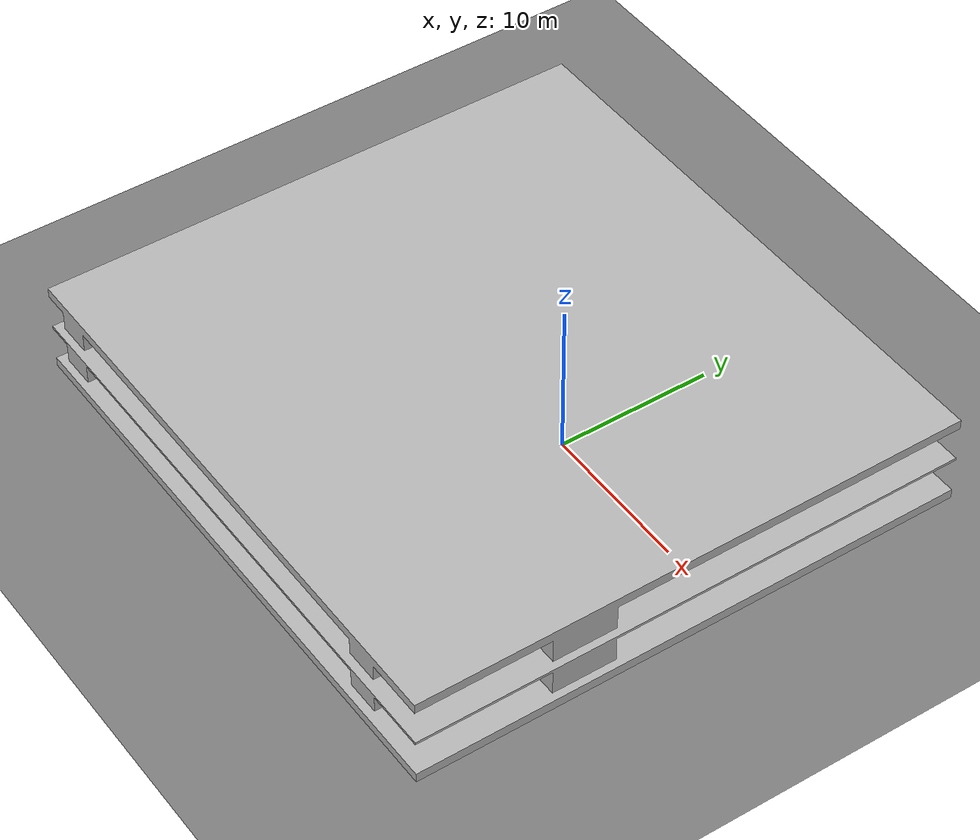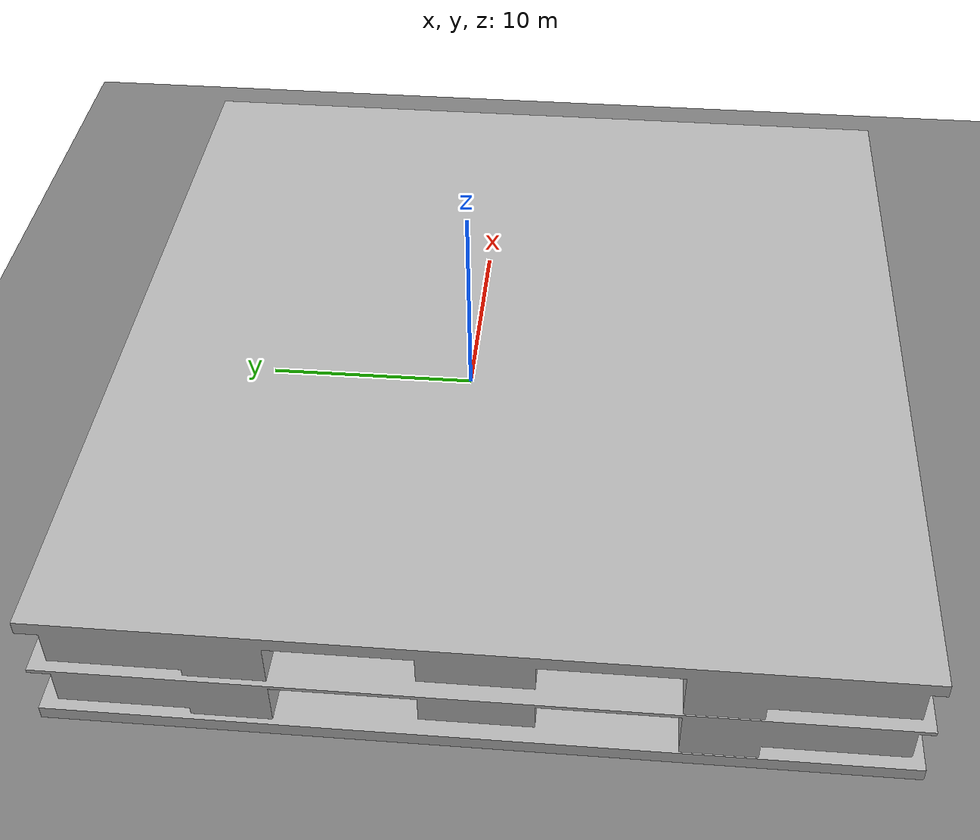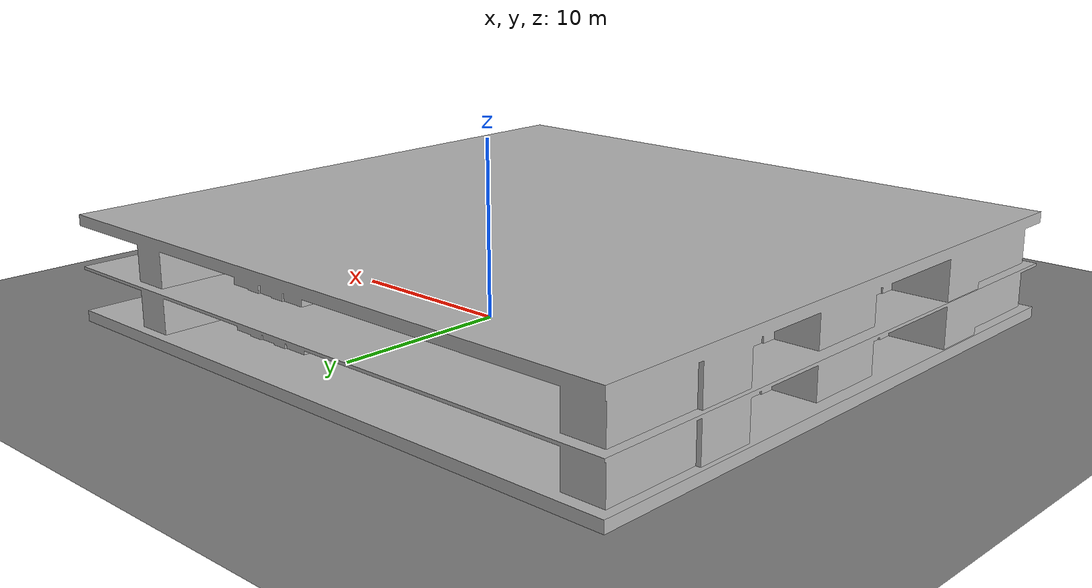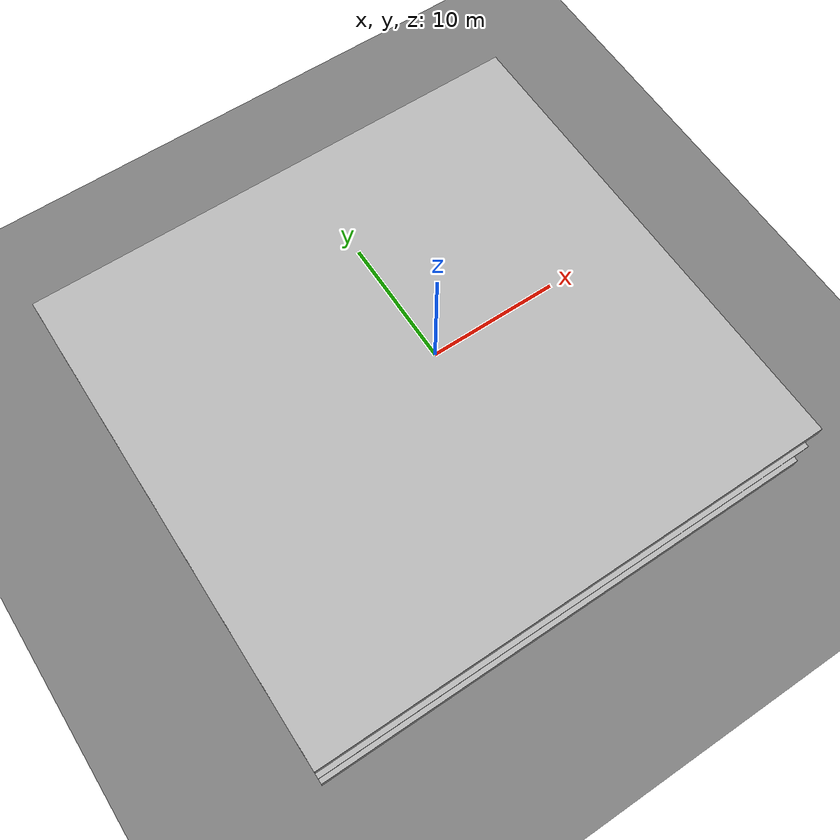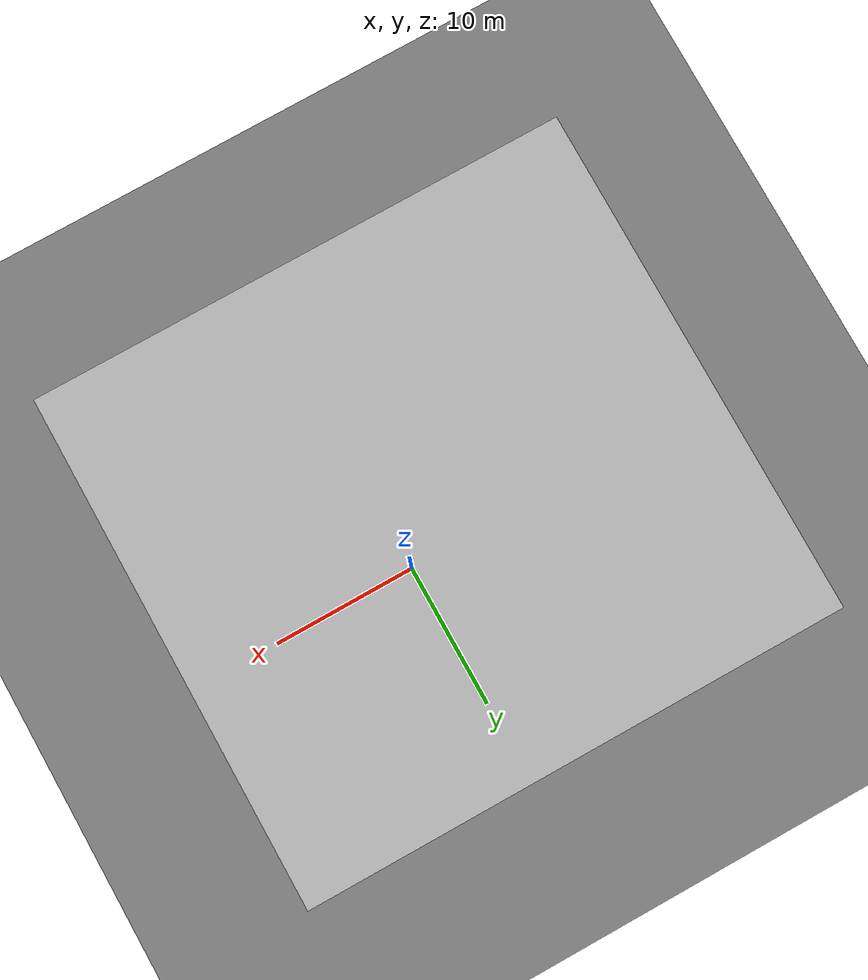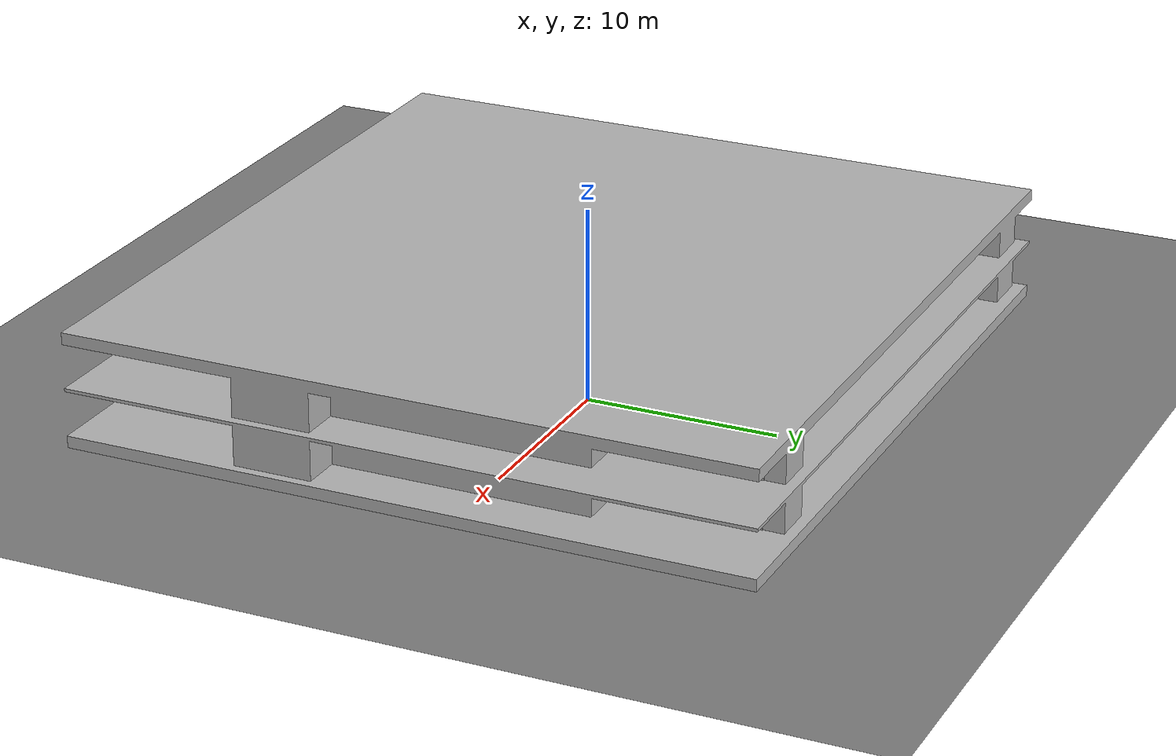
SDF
<?xml version="1.0" ?>
<sdf version="1.9">
  <world name="test_building_world">

    <physics name="default_physics" type="ode">
      <max_step_size>0.005</max_step_size>
      <real_time_factor>1.0</real_time_factor>
      <real_time_update_rate>200</real_time_update_rate>
    </physics>

    <plugin filename="gz-sim-physics-system" name="gz::sim::systems::Physics"/>
    <plugin filename="gz-sim-user-commands-system" name="gz::sim::systems::UserCommands"/>
    <plugin filename="gz-sim-scene-broadcaster-system" name="gz::sim::systems::SceneBroadcaster"/>
    <plugin filename="gz-sim-sensors-system" name="gz::sim::systems::Sensors">
      <render_engine>ogre2</render_engine>
    </plugin>
    <plugin filename="gz-sim-imu-system" name="gz::sim::systems::Imu"/>
    <plugin filename="gz-sim-contact-system" name="gz::sim::systems::Contact"/>
    <plugin filename="gz-sim-magnetometer-system" name="gz::sim::systems::Magnetometer"/>
    <plugin filename="gz-sim-air-pressure-system" name="gz::sim::systems::AirPressure"/>
    <plugin filename="gz-sim-navsat-system" name="gz::sim::systems::NavSat"/>
    <plugin filename="gz-sim-forcetorque-system" name="gz::sim::systems::ForceTorque"/>

    <spherical_coordinates>
      <surface_model>EARTH_WGS84</surface_model>
      <world_frame_orientation>ENU</world_frame_orientation>
      <latitude_deg>47.397971057728974</latitude_deg>
      <longitude_deg>8.546163739800146</longitude_deg>
      <elevation>0</elevation>
    </spherical_coordinates>

    <scene>
      <ambient>0.6 0.6 0.6 1.0</ambient>
      <background>0.3 0.3 0.3 1.0</background>
      <shadows>false</shadows>
    </scene>

    <light type="directional" name="sun">
      <cast_shadows>false</cast_shadows>
      <pose>0 0 10 0 0 0</pose>
      <diffuse>0.9 0.9 0.9 1</diffuse>
      <specular>0.3 0.3 0.3 1</specular>
      <direction>-0.5 0.1 -0.9</direction>
    </light>

    <model name="ground_plane">
      <static>true</static>
      <link name="link">
        <collision name="collision">
          <geometry>
            <plane>
              <normal>0 0 1</normal>
              <size>100 100</size>
            </plane>
          </geometry>
        </collision>
        <visual name="visual">
          <geometry>
            <plane>
              <normal>0 0 1</normal>
              <size>100 100</size>
            </plane>
          </geometry>
          <material>
            <ambient>0.4 0.4 0.4 1</ambient>
            <diffuse>0.5 0.5 0.5 1</diffuse>
          </material>
        </visual>
      </link>
    </model>

    <include>
      <uri>model://test</uri>
      <name>test_building</name>
      <pose>0 0 0 0 0 0</pose>
    </include>

  </world>
</sdf>

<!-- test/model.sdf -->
<sdf version="1.9">
  <model name="test_building">
    <static>true</static>
    <link name="floor_slab">
      <pose>0 0 -17.776 1.5708 0 0</pose>
      <collision name="floor_collision">
        <geometry>
          <mesh>
            <uri>meshes/testroom6.obj</uri>
          </mesh>
        </geometry>
      </collision>
    </link>

    <link name="building_visual_link">
      <pose>0 0 -17.776 1.5708 0 0</pose>
      <visual name="building_visual">
        <geometry>
          <mesh>
            <uri>meshes/testroom6.obj</uri>
            <scale>1 1 1</scale>
          </mesh>
        </geometry>
      </visual>
    </link>
  </model>
</sdf>
